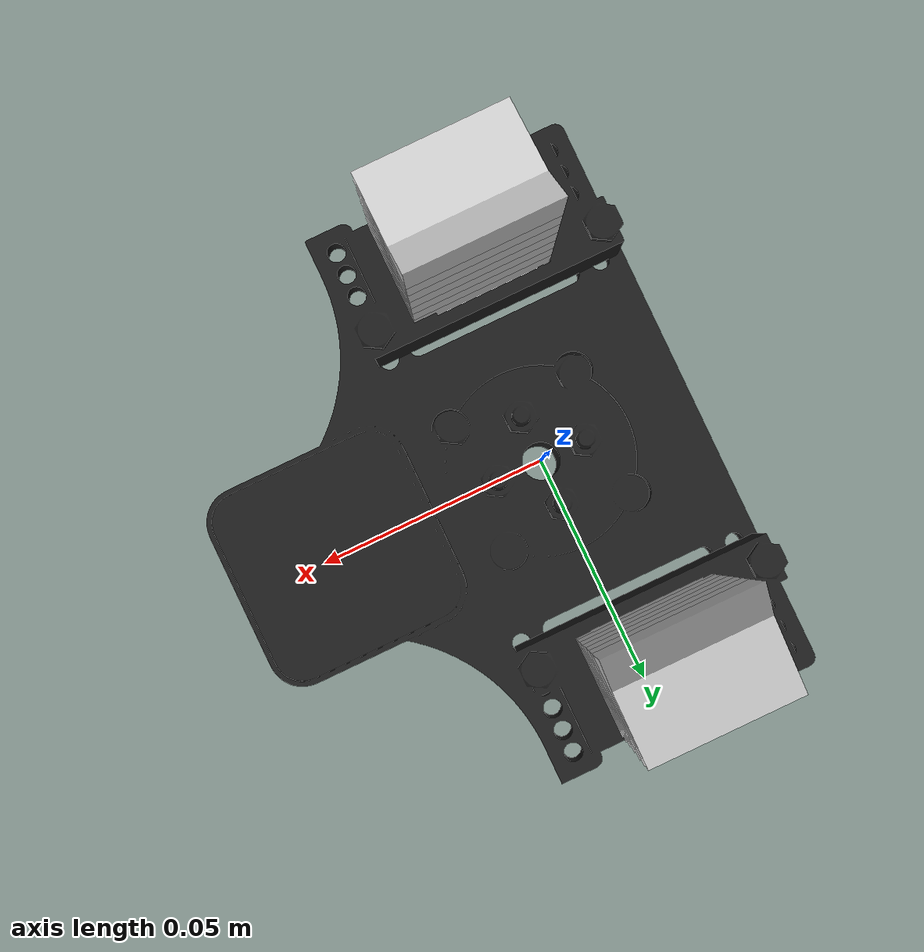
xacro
<?xml version="1.0" encoding="UTF-8"?>
<robot xmlns:xacro="http://www.ros.org/wiki/xacro" name="pneumatic_gripper_standalone">

    <xacro:include filename="$(find abb_irb140_description)/urdf/irb140_pneumonic_gripper.xacro"/>

    <link name="world"/>

    <xacro:pneumatic_gripper name="pneumatic_gripper" parent="world" xyz="0 0 0" rpy="0 0 0"/>

</robot>

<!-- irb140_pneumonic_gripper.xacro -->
<robot xmlns:xacro="http://www.ros.org/wiki/xacro" name="pneumatic_gripper">

<xacro:include filename="$(find abb_irb140_description)/urdf/irb140_pneumonic_gripper_finger.xacro"/>

<!-- Set include_camera:=false at xacro time to drop the wrist RGBD camera. -->
<xacro:arg name="include_camera" default="true"/>

<!-- 3D-printed PLA housing: solid PLA is ~1240 kg/m^3; with typical printed
     wall/infill this shell is roughly half that, so ~650 kg/m^3 over the
     bounding box gives a realistic ~0.45 kg body. -->
<xacro:property name="pla_density" value="650.0"/>

<xacro:macro name="pneumatic_gripper" params="name parent xyz:='0 0 0' rpy:='0 0 0'">

    <!-- Attach the gripper body to the robot flange.
         xyz/rpy are expressed in the parent (tool0) frame; set xyz to
         shift the gripper along the flange axes. -->
    <joint name="${name}_to_${parent}" type="fixed">
        <parent link="${parent}"/>
        <child link="${name}_base_link"/>
        <origin xyz="${xyz}" rpy="${rpy}"/>
    </joint>

    <link name="${name}_base_link">
        <visual>
            <origin xyz="0 0 -0.03105" rpy="0 0 0"/>
            <geometry>
                <mesh filename="package://abb_irb140_description/meshes/abb_irb140_pneumonic_end_effector/visual/ABBIRB140_EndEffector.stl" scale="0.001 0.001 0.001"/>
            </geometry>
            <material name="plastic">
                <color rgba="0.11 0.11 0.11 1"/>
            </material>
        </visual>

        <collision>
            <origin xyz="0.0165 0 -0.005" rpy="0 0 0"/>
            <geometry>
                <box size="0.1 0.125 0.062"/>
            </geometry>
        </collision>

        <xacro:solid_box_inertial sx="0.1" sy="0.125" sz="0.062" density="${pla_density}">
            <origin xyz="0.0165 0 -0.005" rpy="0 0 0"/>
        </xacro:solid_box_inertial>
    </link>

    <xacro:pneumatic_gripper_finger name="${name}_left" parent="${name}_base_link">
        <origin xyz="0.0 0.046 0.0071" rpy="0.0 0.0 1.57"/>
    </xacro:pneumatic_gripper_finger>

    <xacro:pneumatic_gripper_finger name="${name}_right" parent="${name}_base_link"
                                    mimic_master="${name}_left_link_1_to_link_2">
        <origin xyz="-0.008 -0.046 0.0071" rpy="0.0 0.0 -1.57"/>
    </xacro:pneumatic_gripper_finger>

    <!-- Eye-in-hand RGBD camera                                           -->
    <xacro:if value="$(arg include_camera)">

        <link name="depth_camera">
            <inertial>
                <mass value="0.05"/>
                <inertia ixx="1e-5" ixy="0" ixz="0" iyy="1e-5" iyz="0" izz="1e-5"/>
            </inertial>
        </link>

        <joint name="${name}_to_depth_camera" type="fixed">
            <parent link="${name}_base_link"/>
            <child link="depth_camera"/>
            <origin xyz="-0.025 0.0 0.05" rpy="3.14159265359 -1.57079632679 0"/>
        </joint>

        <!-- Keep depth_camera as its own link/frame in the converted SDF
             instead of letting urdf2sdf lump it (and the sensor) back into
             link_6 through the fixed-joint chain. -->
        <gazebo reference="${name}_to_depth_camera">
            <preserveFixedJoint>true</preserveFixedJoint>
            <disableFixedJointLumping>true</disableFixedJointLumping>
        </gazebo>

        <!-- Standard ROS optical frame (z forward, x right, y down) relative to
             the camera body link; camera_info / point clouds are published in
             this frame. -->
        <link name="depth_camera_optical"/>
        <joint name="depth_camera_to_optical" type="fixed">
            <parent link="depth_camera"/>
            <child link="depth_camera_optical"/>
            <origin xyz="0 0 0" rpy="0.0 0.0 0"/>
        </joint>

        <gazebo reference="depth_camera">
            <sensor name="rgbd_camera" type="rgbd_camera">
                <always_on>1</always_on>
                <update_rate>30</update_rate>
                <visualize>true</visualize>
                <topic>rgbd_camera</topic>
                <gz_frame_id>depth_camera</gz_frame_id>
                <camera>
                    <horizontal_fov>1.3962634</horizontal_fov>
                    <image>
                        <width>640</width>
                        <height>480</height>
                        <format>R8G8B8</format>
                    </image>
                    <clip>
                        <near>0.1</near>
                        <far>15</far>
                    </clip>
                    <depth_camera>
                        <clip>
                            <near>0.1</near>
                            <far>15</far>
                        </clip>
                    </depth_camera>
                    <optical_frame_id>depth_camera_optical</optical_frame_id>
                </camera>
            </sensor>
        </gazebo>

    </xacro:if>

</xacro:macro>

</robot>

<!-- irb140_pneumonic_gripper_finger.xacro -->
<robot xmlns:xacro="http://www.ros.org/wiki/xacro" name="pneumatic_gripper_finger">

    <!-- Properties -->
    <xacro:property name="mesh_scale" value="0.001 0.001 0.001"/>
    <xacro:property name="collision_scale" value="0.025 0.03 0.1"/>
    <xacro:property name="joint_lower_limit" value="-0.09"/>

    <!-- Cast silicone rubber (Dragon Skin / Ecoflex class), ~1100 kg/m^3.
         Raise this if the finger chain jitters in Gazebo; it scales every
         segment mass and inertia together. -->
    <xacro:property name="silicone_density" value="1100.0"/>

    <material name="offwhite">
        <color rgba="0.8 0.8 0.8 1"/>
    </material>

    <xacro:macro name="solid_box_inertial" params="sx sy sz density *origin">
        <inertial>
            <xacro:insert_block name="origin"/>
            <mass value="${density * sx * sy * sz}"/>
            <inertia ixx="${density * sx * sy * sz * (sy*sy + sz*sz) / 12.0}" ixy="0.0" ixz="0.0"
                     iyy="${density * sx * sy * sz * (sx*sx + sz*sz) / 12.0}" iyz="0.0"
                     izz="${density * sx * sy * sz * (sx*sx + sy*sy) / 12.0}"/>
        </inertial>
    </xacro:macro>

    <xacro:macro name="pneumatic_gripper_finger" params="name parent mimic_master:='' *origin">

        <xacro:property name="_master" value="${name}_link_1_to_link_2"/>
        <xacro:unless value="${mimic_master == ''}">
            <xacro:property name="_master" value="${mimic_master}"/>
        </xacro:unless>

        <link name="${name}_link_1">
            <visual>
                <geometry>
                    <mesh filename="package://abb_irb140_description/meshes/abb_irb140_pneumonic_end_effector/visual/finger_visual/visual/link_1.stl" scale="${mesh_scale}"/>
                </geometry>
                <material name="offwhite"/>
            </visual>
            <collision>
                <origin xyz="0 0.005 0.009" rpy="0 0 0"/>
                <geometry>
                    <box size="0.025 0.03 0.022"/>
                </geometry>
            </collision>
            <xacro:solid_box_inertial sx="0.025" sy="0.03" sz="0.022" density="${silicone_density}">
                <origin xyz="0 0.005 0.009" rpy="0 0 0"/>
            </xacro:solid_box_inertial>
        </link>

        <link name="${name}_link_2">
            <visual>
                <geometry>
                    <mesh filename="package://abb_irb140_description/meshes/abb_irb140_pneumonic_end_effector/visual/finger_visual/visual/link_2.stl" scale="${mesh_scale}"/>
                </geometry>
                <material name="offwhite"/>
            </visual>
            <collision>
                <origin xyz="0 0 0.025" rpy="0 0 0"/>
                <geometry>
                    <box size="0.025 0.03 0.011"/>
                </geometry>
            </collision>
            <xacro:solid_box_inertial sx="0.025" sy="0.03" sz="0.011" density="${silicone_density}">
                <origin xyz="0 0 0.025" rpy="0 0 0"/>
            </xacro:solid_box_inertial>
        </link>

        <link name="${name}_link_3">
            <visual>
                <geometry>
                    <mesh filename="package://abb_irb140_description/meshes/abb_irb140_pneumonic_end_effector/visual/finger_visual/visual/link_3.stl" scale="${mesh_scale}"/>
                </geometry>
                <material name="offwhite"/>
            </visual>
            <collision>
                <origin xyz="0 0 0.035" rpy="0 0 0"/>
                <geometry>
                    <box size="0.025 0.03 0.011"/>
                </geometry>
            </collision>
            <xacro:solid_box_inertial sx="0.025" sy="0.03" sz="0.011" density="${silicone_density}">
                <origin xyz="0 0 0.035" rpy="0 0 0"/>
            </xacro:solid_box_inertial>
        </link>

        <link name="${name}_link_4">
            <visual>
                <geometry>
                    <mesh filename="package://abb_irb140_description/meshes/abb_irb140_pneumonic_end_effector/visual/finger_visual/visual/link_4.stl" scale="${mesh_scale}"/>
                </geometry>
                <material name="offwhite"/>
            </visual>
            <collision>
                <origin xyz="0 0 0.055" rpy="0 0 0"/>
                <geometry>
                    <box size="0.025 0.03 0.011"/>
                </geometry>
            </collision>
            <xacro:solid_box_inertial sx="0.025" sy="0.03" sz="0.011" density="${silicone_density}">
                <origin xyz="0 0 0.055" rpy="0 0 0"/>
            </xacro:solid_box_inertial>
        </link>

        <link name="${name}_link_5">
            <visual>
                <geometry>
                    <mesh filename="package://abb_irb140_description/meshes/abb_irb140_pneumonic_end_effector/visual/finger_visual/visual/link_5.stl" scale="${mesh_scale}"/>
                </geometry>
                <material name="offwhite"/>
            </visual>
            <collision>
                <origin xyz="0 0 0.065" rpy="0 0 0"/>
                <geometry>
                    <box size="0.025 0.03 0.011"/>
                </geometry>
            </collision>
            <xacro:solid_box_inertial sx="0.025" sy="0.03" sz="0.011" density="${silicone_density}">
                <origin xyz="0 0 0.065" rpy="0 0 0"/>
            </xacro:solid_box_inertial>
        </link>

        <link name="${name}_link_6">
            <visual>
                <geometry>
                    <mesh filename="package://abb_irb140_description/meshes/abb_irb140_pneumonic_end_effector/visual/finger_visual/visual/link_6.stl" scale="${mesh_scale}"/>
                </geometry>
                <material name="offwhite"/>
            </visual>
            <collision>
                <origin xyz="0 0 0.075" rpy="0 0 0"/>
                <geometry>
                    <box size="0.025 0.03 0.011"/>
                </geometry>
            </collision>
            <xacro:solid_box_inertial sx="0.025" sy="0.03" sz="0.011" density="${silicone_density}">
                <origin xyz="0 0 0.075" rpy="0 0 0"/>
            </xacro:solid_box_inertial>
        </link>

        <link name="${name}_link_7">
            <visual>
                <geometry>
                    <mesh filename="package://abb_irb140_description/meshes/abb_irb140_pneumonic_end_effector/visual/finger_visual/visual/link_7.stl" scale="${mesh_scale}"/>
                </geometry>
                <material name="offwhite"/>
            </visual>
            <collision>
                <origin xyz="0 0 0.085" rpy="0 0 0"/>
                <geometry>
                    <box size="0.025 0.03 0.011"/>
                </geometry>
            </collision>
            <xacro:solid_box_inertial sx="0.025" sy="0.03" sz="0.011" density="${silicone_density}">
                <origin xyz="0 0 0.085" rpy="0 0 0"/>
            </xacro:solid_box_inertial>
        </link>

        <!-- Base to link_1 joint -->
        <joint name="${name}_base_to_link_1" type="fixed">
            <parent link="${parent}"/>
            <child link="${name}_link_1"/>
            <xacro:insert_block name="origin"/>
        </joint>

        <!-- Joints between links -->
        <joint name="${name}_link_1_to_link_2" type="revolute">
            <parent link="${name}_link_1"/>
            <child link="${name}_link_2"/>
            <origin xyz="0 0 0" rpy="0 0 0"/>
            <axis xyz="0 1 0"/>
            <limit lower="${joint_lower_limit}" upper="0" effort="10" velocity="1.0"/>
            <dynamics damping="0.1"/>
            <xacro:if value="${mimic_master != ''}">
                <mimic joint="${mimic_master}" multiplier="1.0" offset="0.0"/>
            </xacro:if>
        </joint>

        <joint name="${name}_link_2_to_link_3" type="revolute">
            <parent link="${name}_link_2"/>
            <child link="${name}_link_3"/>
            <origin xyz="0 0 0" rpy="0 0 0"/>
            <axis xyz="0 1 0"/>
            <limit lower="${joint_lower_limit}" upper="0" effort="10" velocity="1.0"/>
            <dynamics damping="0.1"/>
            <mimic joint="${_master}" multiplier="1.0" offset="0.0"/>
        </joint>

        <joint name="${name}_link_3_to_link_4" type="revolute">
            <parent link="${name}_link_3"/>
            <child link="${name}_link_4"/>
            <origin xyz="0 0 0" rpy="0 0 0"/>
            <axis xyz="0 1 0"/>
            <limit lower="${joint_lower_limit}" upper="0" effort="10" velocity="1.0"/>
            <dynamics damping="0.1"/>
            <mimic joint="${_master}" multiplier="1.0" offset="0.0"/>
        </joint>

        <joint name="${name}_link_4_to_link_5" type="revolute">
            <parent link="${name}_link_4"/>
            <child link="${name}_link_5"/>
            <origin xyz="0 0 0" rpy="0 0 0"/>
            <axis xyz="0 1 0"/>
            <limit lower="${joint_lower_limit}" upper="0" effort="10" velocity="1.0"/>
            <dynamics damping="0.1"/>
            <mimic joint="${_master}" multiplier="1.0" offset="0.0"/>
        </joint>

        <joint name="${name}_link_5_to_link_6" type="revolute">
            <parent link="${name}_link_5"/>
            <child link="${name}_link_6"/>
            <origin xyz="0 0 0" rpy="0 0 0"/>
            <axis xyz="0 1 0"/>
            <limit lower="${joint_lower_limit}" upper="0" effort="10" velocity="1.0"/>
            <dynamics damping="0.1"/>
            <mimic joint="${_master}" multiplier="1.0" offset="0.0"/>
        </joint>

        <joint name="${name}_link_6_to_link_7" type="revolute">
            <parent link="${name}_link_6"/>
            <child link="${name}_link_7"/>
            <origin xyz="0 0 0" rpy="0 0 0"/>
            <axis xyz="0 1 0"/>
            <limit lower="${joint_lower_limit}" upper="0" effort="10" velocity="1.0"/>
            <dynamics damping="0.1"/>
            <mimic joint="${_master}" multiplier="1.0" offset="0.0"/>
        </joint>

    </xacro:macro>

</robot>
